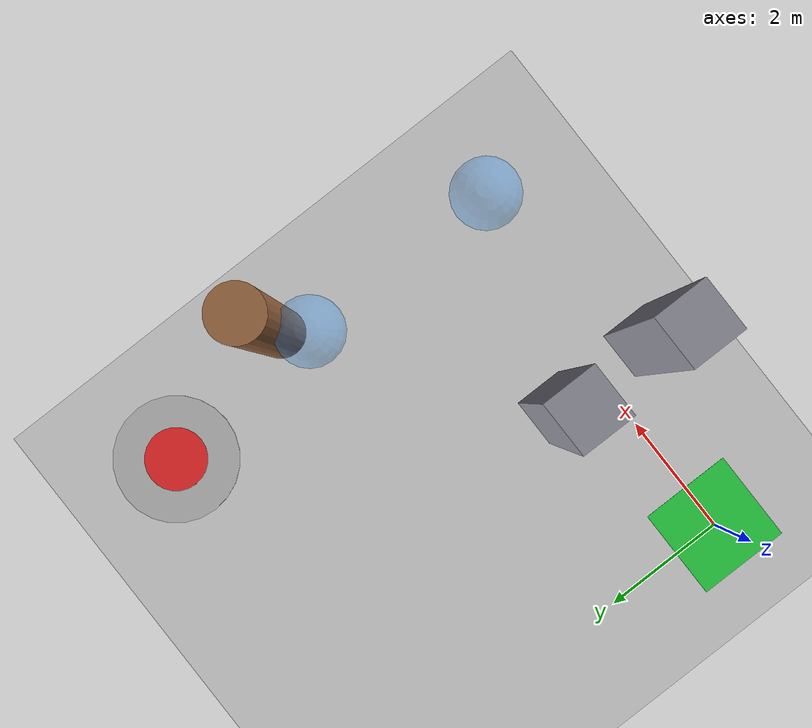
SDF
<?xml version="1.0" ?>
<sdf version="1.6">
  <world name="map3_gate_turn">

    <!-- ===== 기본 환경 ===== -->
    <include><uri>model://sun</uri></include>
    <include><uri>model://ground_plane</uri></include>

    <!-- 물리 엔진 설정 (practice.world 와 동일) -->
    <physics name='default_physics' default='0' type='ode'>
      <gravity>0 0 -9.8066</gravity>
      <ode>
        <solver>
          <type>quick</type>
          <iters>10</iters>
          <sor>1.3</sor>
        </solver>
        <constraints>
          <cfm>0</cfm>
          <erp>0.2</erp>
          <contact_max_correcting_vel>100</contact_max_correcting_vel>
          <contact_surface_layer>0.001</contact_surface_layer>
        </constraints>
      </ode>
      <max_step_size>0.004</max_step_size>
      <real_time_factor>1</real_time_factor>
      <real_time_update_rate>250</real_time_update_rate>
    </physics>

    <!-- ===== Start 표시 ===== -->
    <include>
      <uri>model://start_marker</uri>
      <name>start_pad</name>
      <pose>0 0 0 0 0 0</pose>
    </include>

    <!-- ===== Waypoint 시각화 (map3_path.csv : 동진 -> 코너 -> 북진) ===== -->
    <include>
      <uri>model://waypoint_marker</uri>
      <name>wp1_marker</name>
      <pose>6.0 0.0 2.5 0 0 0</pose>
    </include>
    <include>
      <uri>model://waypoint_marker</uri>
      <name>wp2_marker</name>
      <pose>6.0 3.0 2.5 0 0 0</pose>
    </include>

    <!-- ===== 장애물 : 게이트(좁은 문) + 코너 회피 ===== -->
    <!-- 게이트 좌측 박스 (y=+0.85) -->
    <model name="gate_left">
      <static>true</static>
      <pose>3.0 0.85 2.0 0 0 0</pose>
      <link name="link">
        <collision name="collision">
          <geometry><box><size>0.8 0.8 4.0</size></box></geometry>
        </collision>
        <visual name="visual">
          <geometry><box><size>0.8 0.8 4.0</size></box></geometry>
          <material>
            <ambient>0.45 0.45 0.5 1</ambient>
            <diffuse>0.55 0.55 0.6 1</diffuse>
          </material>
        </visual>
      </link>
    </model>

    <!-- 게이트 우측 박스 (y=-0.85), 통로폭 ~0.9 m -->
    <model name="gate_right">
      <static>true</static>
      <pose>3.0 -0.85 2.0 0 0 0</pose>
      <link name="link">
        <collision name="collision">
          <geometry><box><size>0.8 0.8 4.0</size></box></geometry>
        </collision>
        <visual name="visual">
          <geometry><box><size>0.8 0.8 4.0</size></box></geometry>
          <material>
            <ambient>0.45 0.45 0.5 1</ambient>
            <diffuse>0.55 0.55 0.6 1</diffuse>
          </material>
        </visual>
      </link>
    </model>

    <!-- 코너 직후 북진 구간의 원통 (x=+0.55 측 돌출) -> 좌로 회피 -->
    <model name="corner_cyl">
      <static>true</static>
      <pose>6.55 3.5 2.0 0 0 0</pose>
      <link name="link">
        <collision name="collision">
          <geometry><cylinder><radius>0.4</radius><length>4.0</length></cylinder></geometry>
        </collision>
        <visual name="visual">
          <geometry><cylinder><radius>0.4</radius><length>4.0</length></cylinder></geometry>
          <material>
            <ambient>0.5 0.35 0.2 1</ambient>
            <diffuse>0.6 0.4 0.25 1</diffuse>
          </material>
        </visual>
      </link>
    </model>

    <!-- ===== 랜딩 패드 (경로 끝점 = goal) ===== -->
    <include>
      <uri>model://landing_pad</uri>
      <name>landing_pad</name>
      <pose>6.0 6.0 0 0 0 0</pose>
    </include>

    <!-- 카메라 시점 -->
    <gui fullscreen='0'>
      <camera name='user_camera'>
        <pose>-3 -3 9 0 0.7 0.5</pose>
      </camera>
    </gui>

  </world>
</sdf>

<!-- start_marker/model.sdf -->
<sdf version='1.6'>
  <model name='start_marker'>
    <static>true</static>
    <link name='link'>
      <pose>0 0 0.005 0 0 0</pose>
      <visual name='visual'>
        <geometry>
          <box><size>1.5 1.5 0.01</size></box>
        </geometry>
        <material>
          <ambient>0.1 0.7 0.2 1</ambient>
          <diffuse>0.15 0.8 0.25 1</diffuse>
          <emissive>0.0 0.3 0.0 1</emissive>
        </material>
      </visual>
    </link>
  </model>
</sdf>

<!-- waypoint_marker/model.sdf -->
<sdf version='1.6'>
  <model name='waypoint_marker'>
    <static>true</static>
    <link name='link'>
      <visual name='visual'>
        <geometry>
          <sphere><radius>0.5</radius></sphere>
        </geometry>
        <material>
          <ambient>0.2 0.6 1.0 0.35</ambient>
          <diffuse>0.2 0.6 1.0 0.35</diffuse>
          <specular>0.1 0.1 0.1 1</specular>
        </material>
        <transparency>0.6</transparency>
        <cast_shadows>false</cast_shadows>
      </visual>
      <!-- collision 없음 → 드론이 통과 가능, 센서에도 인식 안 됨 -->
    </link>
  </model>
</sdf>

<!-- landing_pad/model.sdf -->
<sdf version='1.6'>
  <model name='landing_pad'>
    <static>true</static>

    <link name='pad_base'>
      <pose>0 0 0.01 0 0 0</pose>
      <collision name='collision'>
        <geometry>
          <cylinder><radius>1.0</radius><length>0.02</length></cylinder>
        </geometry>
      </collision>
      <visual name='visual'>
        <geometry>
          <cylinder><radius>1.0</radius><length>0.02</length></cylinder>
        </geometry>
        <material>
          <ambient>0.6 0.6 0.6 1</ambient>
          <diffuse>0.7 0.7 0.7 1</diffuse>
        </material>
      </visual>
    </link>

    <link name='red_target'>
      <pose>0 0 0.025 0 0 0</pose>
      <visual name='visual'>
        <geometry>
          <cylinder><radius>0.5</radius><length>0.005</length></cylinder>
        </geometry>
        <material>
          <ambient>0.8 0.1 0.1 1</ambient>
          <diffuse>0.9 0.15 0.15 1</diffuse>
          <emissive>0.4 0.0 0.0 1</emissive>
        </material>
      </visual>
    </link>

    <joint name='target_joint' type='fixed'>
      <parent>pad_base</parent>
      <child>red_target</child>
    </joint>
  </model>
</sdf>
